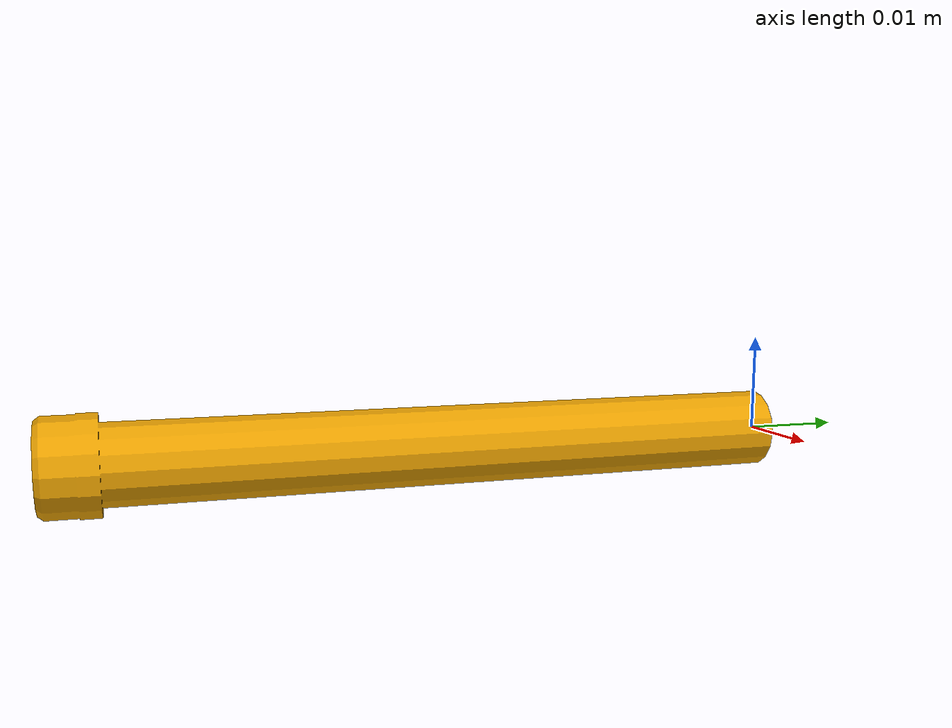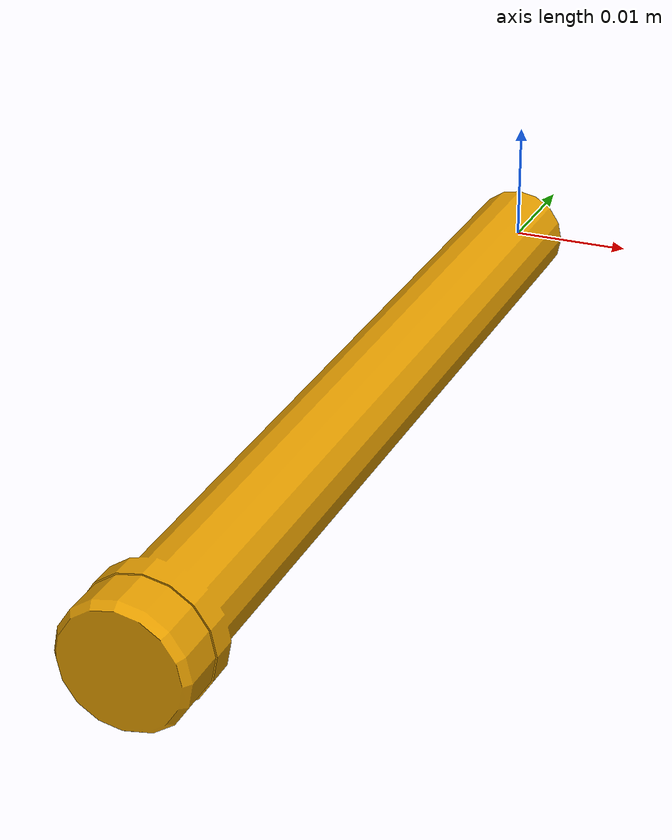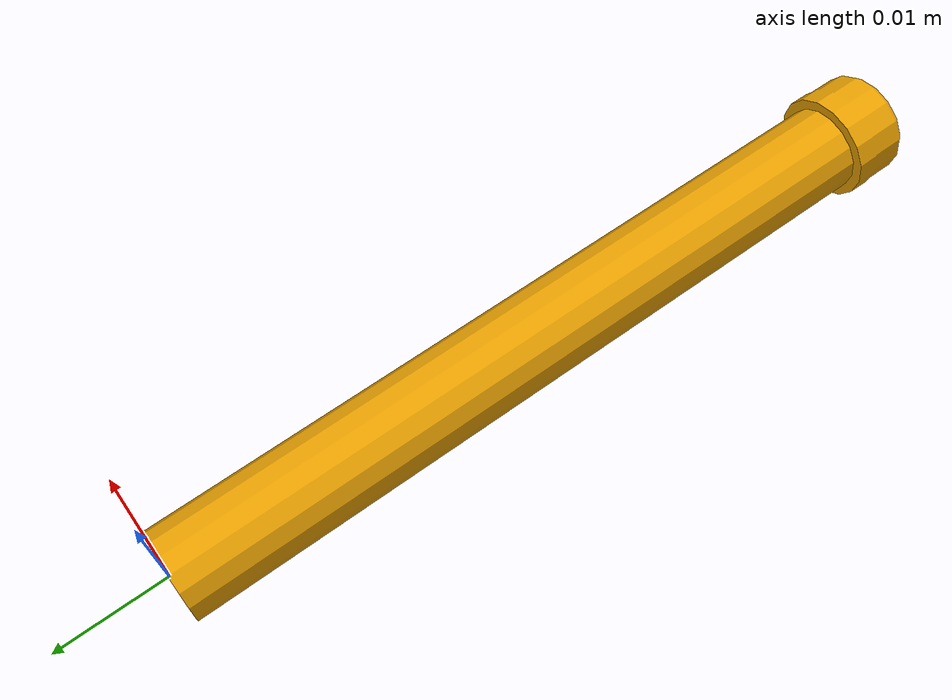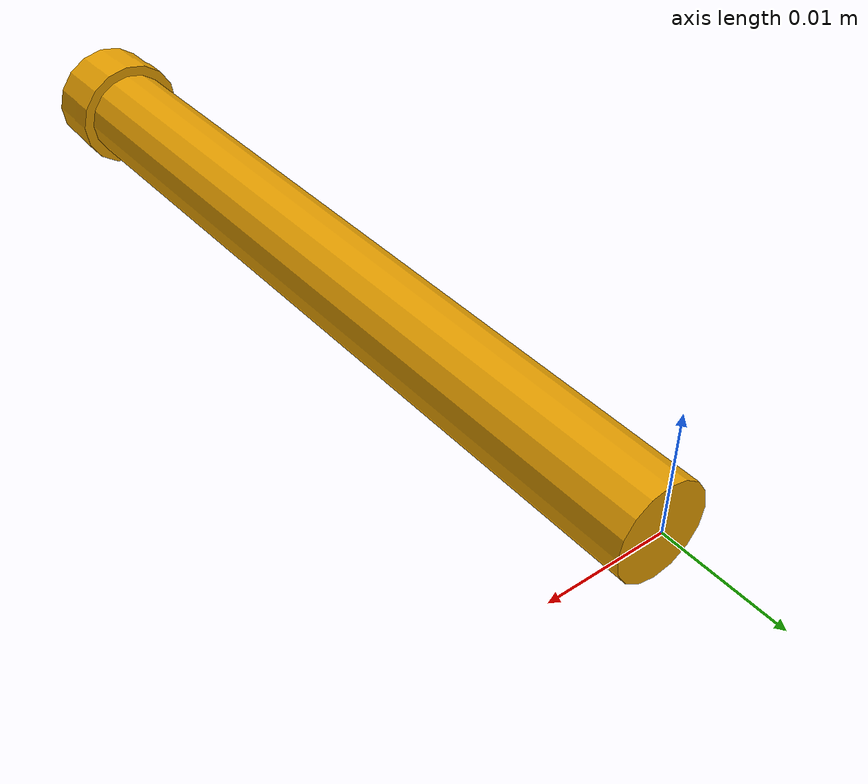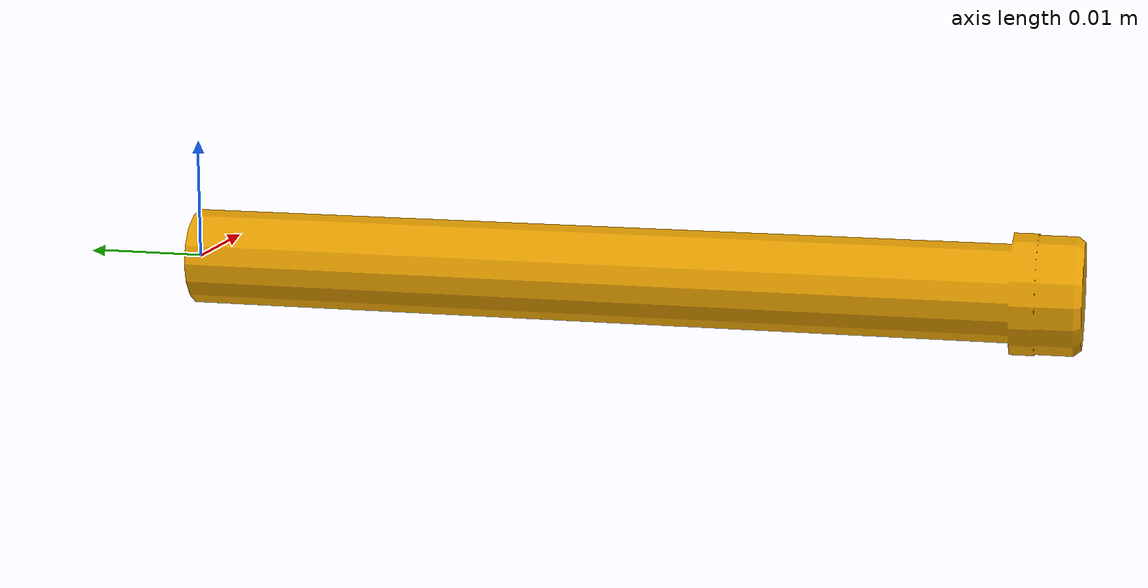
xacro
<?xml version="1.0" ?>
<robot xmlns:xacro="http://www.ros.org/wiki/xacro" name="generic_labware_tube_10_75">
    <link name='0_base_link'>
        <visual name='visual'>
            <geometry>
                <mesh filename="meshes/0_base.stl"/>
            </geometry>
            <material name="clay" />
        </visual>
    </link>
</robot>
